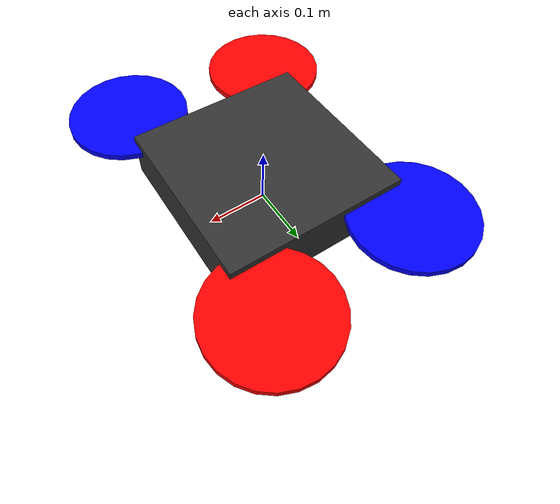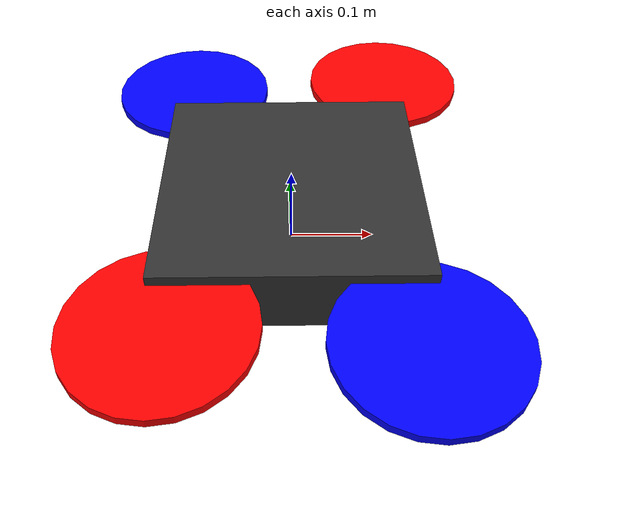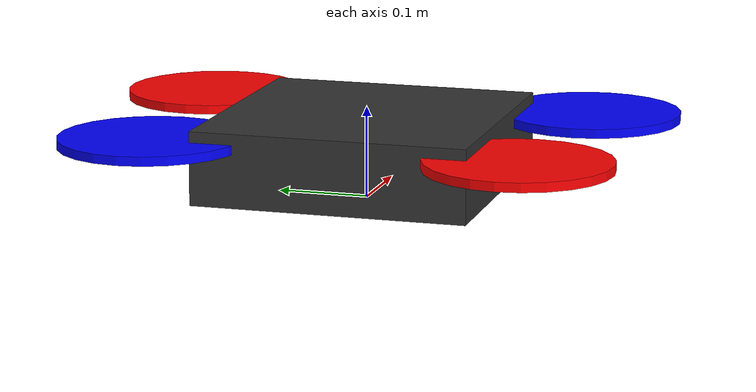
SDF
<?xml version="1.0" ?>
<sdf version="1.8">
  <model name="x3">
    <pose>0 0 0.055 0 0 0</pose>
    <link name="X3/base_link">
      <pose>0 0 0 0 0 0</pose>
      <inertial>
        <pose>0 0 0 0 0 0</pose>
        <mass>1.5</mass>
        <inertia>
          <ixx>0.03</ixx>
          <ixy>0</ixy>
          <ixz>0</ixz>
          <iyy>0.03</iyy>
          <iyz>0</iyz>
          <izz>0.05</izz>
        </inertia>
      </inertial>
      <collision name="X3/base_link_collision">
        <pose>0 0 0 0 0 0</pose>
        <geometry>
          <box>
            <size>0.47 0.47 0.11</size>
          </box>
        </geometry>
      </collision>
      <visual name="X3/base_link_visual">
        <pose>0 0 0 0 0 0</pose>
        <geometry>
          <box>
            <size>0.3 0.3 0.08</size>
          </box>
        </geometry>
        <material>
          <ambient>0.1 0.1 0.1 1</ambient>
          <diffuse>0.2 0.2 0.2 1</diffuse>
          <specular>0.8 0.8 0.8 1</specular>
        </material>
      </visual>
    </link>

    <!-- Rotor 0 -->
    <link name="X3/rotor_0">
      <pose>0.13 -0.22 0.023 0 0 0</pose>
      <inertial>
        <mass>0.005</mass>
        <inertia>
          <ixx>9.75e-07</ixx>
          <iyy>0.0002731</iyy>
          <izz>0.000274</izz>
        </inertia>
      </inertial>
      <visual name="X3/rotor_0_visual">
        <geometry>
          <cylinder>
            <radius>0.1</radius>
            <length>0.01</length>
          </cylinder>
        </geometry>
        <material>
          <ambient>0 0 1 1</ambient>
          <diffuse>0 0 1 1</diffuse>
        </material>
      </visual>
    </link>

    <joint name="X3/rotor_0_joint" type="revolute">
      <child>X3/rotor_0</child>
      <parent>X3/base_link</parent>
      <axis>
        <xyz>0 0 1</xyz>
        <limit>
          <lower>-1e+16</lower>
          <upper>1e+16</upper>
        </limit>
      </axis>
    </joint>

    <!-- Rotor 1 -->
    <link name="X3/rotor_1">
      <pose>-0.13 0.2 0.023 0 0 0</pose>
      <inertial>
        <mass>0.005</mass>
        <inertia>
          <ixx>9.75e-07</ixx>
          <iyy>0.0002731</iyy>
          <izz>0.000274</izz>
        </inertia>
      </inertial>
      <visual name="X3/rotor_1_visual">
        <geometry>
          <cylinder>
            <radius>0.1</radius>
            <length>0.01</length>
          </cylinder>
        </geometry>
        <material>
          <ambient>0 0 1 1</ambient>
          <diffuse>0 0 1 1</diffuse>
        </material>
      </visual>
    </link>

    <joint name="X3/rotor_1_joint" type="revolute">
      <child>X3/rotor_1</child>
      <parent>X3/base_link</parent>
      <axis>
        <xyz>0 0 1</xyz>
        <limit>
          <lower>-1e+16</lower>
          <upper>1e+16</upper>
        </limit>
      </axis>
    </joint>

    <!-- Rotor 2 -->
    <link name="X3/rotor_2">
      <pose>0.13 0.22 0.023 0 0 0</pose>
      <inertial>
        <mass>0.005</mass>
        <inertia>
          <ixx>9.75e-07</ixx>
          <iyy>0.0002731</iyy>
          <izz>0.000274</izz>
        </inertia>
      </inertial>
      <visual name="X3/rotor_2_visual">
        <geometry>
          <cylinder>
            <radius>0.1</radius>
            <length>0.01</length>
          </cylinder>
        </geometry>
        <material>
          <ambient>1 0 0 1</ambient>
          <diffuse>1 0 0 1</diffuse>
        </material>
      </visual>
    </link>

    <joint name="X3/rotor_2_joint" type="revolute">
      <child>X3/rotor_2</child>
      <parent>X3/base_link</parent>
      <axis>
        <xyz>0 0 1</xyz>
        <limit>
          <lower>-1e+16</lower>
          <upper>1e+16</upper>
        </limit>
      </axis>
    </joint>

    <!-- Rotor 3 -->
    <link name="X3/rotor_3">
      <pose>-0.13 -0.2 0.023 0 0 0</pose>
      <inertial>
        <mass>0.005</mass>
        <inertia>
          <ixx>9.75e-07</ixx>
          <iyy>0.0002731</iyy>
          <izz>0.000274</izz>
        </inertia>
      </inertial>
      <visual name="X3/rotor_3_visual">
        <geometry>
          <cylinder>
            <radius>0.1</radius>
            <length>0.01</length>
          </cylinder>
        </geometry>
        <material>
          <ambient>1 0 0 1</ambient>
          <diffuse>1 0 0 1</diffuse>
        </material>
      </visual>
    </link>

    <joint name="X3/rotor_3_joint" type="revolute">
      <child>X3/rotor_3</child>
      <parent>X3/base_link</parent>
      <axis>
        <xyz>0 0 1</xyz>
        <limit>
          <lower>-1e+16</lower>
          <upper>1e+16</upper>
        </limit>
      </axis>
    </joint>

  </model>
</sdf>
